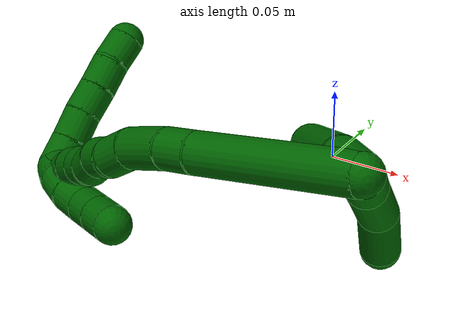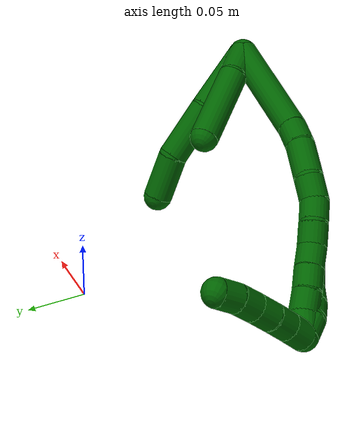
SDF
<sdf version="1.7">
 <world name="default">
  <model name="6">
   <static>0</static>
   <link name="6">
    <collision name="collision-cylinder-e_1_2_8">
     <pose>0.00735 -0.013882 -0.025456 2.64232 0.248263 0.910251</pose>
     <geometry><cylinder><radius>0.0125</radius><length>0.059824</length></cylinder></geometry>
     <surface>
      <friction><ode><mu>1.16</mu><mu2>1.16</mu2><slip1>0</slip1><slip2>0</slip2></ode></friction>
      <contact><ode><kp>1e+06</kp><kd>1</kd><max_vel>0</max_vel><min_depth>0.001</min_depth></ode></contact>
     </surface>
    </collision>
    <visual name="visual-cylinder-e_1_2_8">
     <pose>0.00735 -0.013882 -0.025456 2.64232 0.248263 0.910251</pose>
     <geometry><cylinder><radius>0.0125</radius><length>0.059824</length></cylinder></geometry>
     <material><ambient>0 0.392157 0.003922 1</ambient></material>
    </visual>
    <collision name="collision-cylinder-e_2_8_9">
     <pose>0.02177 -0.043852 -0.069312 2.42316 0.281567 0.721768</pose>
     <geometry><cylinder><radius>0.0125</radius><length>0.050887</length></cylinder></geometry>
     <surface>
      <friction><ode><mu>1.16</mu><mu2>1.16</mu2><slip1>0</slip1><slip2>0</slip2></ode></friction>
      <contact><ode><kp>1e+06</kp><kd>1</kd><max_vel>0</max_vel><min_depth>0.001</min_depth></ode></contact>
     </surface>
    </collision>
    <visual name="visual-cylinder-e_2_8_9">
     <pose>0.02177 -0.043852 -0.069312 2.42316 0.281567 0.721768</pose>
     <geometry><cylinder><radius>0.0125</radius><length>0.050887</length></cylinder></geometry>
     <material><ambient>0 0.392157 0.003922 1</ambient></material>
    </visual>
    <collision name="collision-cylinder-e_3_9_6">
     <pose>0.030823 -0.076267 -0.098454 2.15272 0.101148 0.187233</pose>
     <geometry><cylinder><radius>0.0125</radius><length>0.039289</length></cylinder></geometry>
     <surface>
      <friction><ode><mu>1.16</mu><mu2>1.16</mu2><slip1>0</slip1><slip2>0</slip2></ode></friction>
      <contact><ode><kp>1e+06</kp><kd>1</kd><max_vel>0</max_vel><min_depth>0.001</min_depth></ode></contact>
     </surface>
    </collision>
    <visual name="visual-cylinder-e_3_9_6">
     <pose>0.030823 -0.076267 -0.098454 2.15272 0.101148 0.187233</pose>
     <geometry><cylinder><radius>0.0125</radius><length>0.039289</length></cylinder></geometry>
     <material><ambient>0 0.392157 0.003922 1</ambient></material>
    </visual>
    <collision name="collision-cylinder-e_1_2_10">
     <pose>-0.000784 -0.000179 -0.015234 3.12987 -0.051405 -2.69334</pose>
     <geometry><cylinder><radius>0.0125</radius><length>0.03051</length></cylinder></geometry>
     <surface>
      <friction><ode><mu>1.16</mu><mu2>1.16</mu2><slip1>0</slip1><slip2>0</slip2></ode></friction>
      <contact><ode><kp>1e+06</kp><kd>1</kd><max_vel>0</max_vel><min_depth>0.001</min_depth></ode></contact>
     </surface>
    </collision>
    <visual name="visual-cylinder-e_1_2_10">
     <pose>-0.000784 -0.000179 -0.015234 3.12987 -0.051405 -2.69334</pose>
     <geometry><cylinder><radius>0.0125</radius><length>0.03051</length></cylinder></geometry>
     <material><ambient>0 0.392157 0.003922 1</ambient></material>
    </visual>
    <collision name="collision-cylinder-e_2_10_5">
     <pose>-0.001568 -0.007503 -0.06447 2.93446 -2e-06 -1.7e-05</pose>
     <geometry><cylinder><radius>0.0125</radius><length>0.06949</length></cylinder></geometry>
     <surface>
      <friction><ode><mu>1.16</mu><mu2>1.16</mu2><slip1>0</slip1><slip2>0</slip2></ode></friction>
      <contact><ode><kp>1e+06</kp><kd>1</kd><max_vel>0</max_vel><min_depth>0.001</min_depth></ode></contact>
     </surface>
    </collision>
    <visual name="visual-cylinder-e_2_10_5">
     <pose>-0.001568 -0.007503 -0.06447 2.93446 -2e-06 -1.7e-05</pose>
     <geometry><cylinder><radius>0.0125</radius><length>0.06949</length></cylinder></geometry>
     <material><ambient>0 0.392157 0.003922 1</ambient></material>
    </visual>
    <collision name="collision-cylinder-e_1_2_11">
     <pose>-0.035472 0.002082 -0.037373 -3.08593 -0.758536 3.00214</pose>
     <geometry><cylinder><radius>0.0125</radius><length>0.103139</length></cylinder></geometry>
     <surface>
      <friction><ode><mu>1.16</mu><mu2>1.16</mu2><slip1>0</slip1><slip2>0</slip2></ode></friction>
      <contact><ode><kp>1e+06</kp><kd>1</kd><max_vel>0</max_vel><min_depth>0.001</min_depth></ode></contact>
     </surface>
    </collision>
    <visual name="visual-cylinder-e_1_2_11">
     <pose>-0.035472 0.002082 -0.037373 -3.08593 -0.758536 3.00214</pose>
     <geometry><cylinder><radius>0.0125</radius><length>0.103139</length></cylinder></geometry>
     <material><ambient>0 0.392157 0.003922 1</ambient></material>
    </visual>
    <collision name="collision-cylinder-e_2_11_12">
     <pose>-0.077401 0.004144 -0.083333 3.13918 -0.64469 -3.13438</pose>
     <geometry><cylinder><radius>0.0125</radius><length>0.021486</length></cylinder></geometry>
     <surface>
      <friction><ode><mu>1.16</mu><mu2>1.16</mu2><slip1>0</slip1><slip2>0</slip2></ode></friction>
      <contact><ode><kp>1e+06</kp><kd>1</kd><max_vel>0</max_vel><min_depth>0.001</min_depth></ode></contact>
     </surface>
    </collision>
    <visual name="visual-cylinder-e_2_11_12">
     <pose>-0.077401 0.004144 -0.083333 3.13918 -0.64469 -3.13438</pose>
     <geometry><cylinder><radius>0.0125</radius><length>0.021486</length></cylinder></geometry>
     <material><ambient>0 0.392157 0.003922 1</ambient></material>
    </visual>
    <collision name="collision-cylinder-e_3_12_13">
     <pose>-0.092488 0.001755 -0.106008 2.97502 -0.543467 -2.55939</pose>
     <geometry><cylinder><radius>0.0125</radius><length>0.033382</length></cylinder></geometry>
     <surface>
      <friction><ode><mu>1.16</mu><mu2>1.16</mu2><slip1>0</slip1><slip2>0</slip2></ode></friction>
      <contact><ode><kp>1e+06</kp><kd>1</kd><max_vel>0</max_vel><min_depth>0.001</min_depth></ode></contact>
     </surface>
    </collision>
    <visual name="visual-cylinder-e_3_12_13">
     <pose>-0.092488 0.001755 -0.106008 2.97502 -0.543467 -2.55939</pose>
     <geometry><cylinder><radius>0.0125</radius><length>0.033382</length></cylinder></geometry>
     <material><ambient>0 0.392157 0.003922 1</ambient></material>
    </visual>
    <collision name="collision-cylinder-e_4_13_14">
     <pose>-0.106883 -0.004734 -0.128241 2.67323 -0.563267 -1.76255</pose>
     <geometry><cylinder><radius>0.0125</radius><length>0.021589</length></cylinder></geometry>
     <surface>
      <friction><ode><mu>1.16</mu><mu2>1.16</mu2><slip1>0</slip1><slip2>0</slip2></ode></friction>
      <contact><ode><kp>1e+06</kp><kd>1</kd><max_vel>0</max_vel><min_depth>0.001</min_depth></ode></contact>
     </surface>
    </collision>
    <visual name="visual-cylinder-e_4_13_14">
     <pose>-0.106883 -0.004734 -0.128241 2.67323 -0.563267 -1.76255</pose>
     <geometry><cylinder><radius>0.0125</radius><length>0.021589</length></cylinder></geometry>
     <material><ambient>0 0.392157 0.003922 1</ambient></material>
    </visual>
    <collision name="collision-cylinder-e_5_14_15">
     <pose>-0.115555 -0.011304 -0.145665 2.8835 -0.294233 -1.70314</pose>
     <geometry><cylinder><radius>0.0125</radius><length>0.020058</length></cylinder></geometry>
     <surface>
      <friction><ode><mu>1.16</mu><mu2>1.16</mu2><slip1>0</slip1><slip2>0</slip2></ode></friction>
      <contact><ode><kp>1e+06</kp><kd>1</kd><max_vel>0</max_vel><min_depth>0.001</min_depth></ode></contact>
     </surface>
    </collision>
    <visual name="visual-cylinder-e_5_14_15">
     <pose>-0.115555 -0.011304 -0.145665 2.8835 -0.294233 -1.70314</pose>
     <geometry><cylinder><radius>0.0125</radius><length>0.020058</length></cylinder></geometry>
     <material><ambient>0 0.392157 0.003922 1</ambient></material>
    </visual>
    <collision name="collision-cylinder-e_6_15_16">
     <pose>-0.121141 -0.018675 -0.163406 2.61477 -0.266995 -0.924077</pose>
     <geometry><cylinder><radius>0.0125</radius><length>0.020295</length></cylinder></geometry>
     <surface>
      <friction><ode><mu>1.16</mu><mu2>1.16</mu2><slip1>0</slip1><slip2>0</slip2></ode></friction>
      <contact><ode><kp>1e+06</kp><kd>1</kd><max_vel>0</max_vel><min_depth>0.001</min_depth></ode></contact>
     </surface>
    </collision>
    <visual name="visual-cylinder-e_6_15_16">
     <pose>-0.121141 -0.018675 -0.163406 2.61477 -0.266995 -0.924077</pose>
     <geometry><cylinder><radius>0.0125</radius><length>0.020295</length></cylinder></geometry>
     <material><ambient>0 0.392157 0.003922 1</ambient></material>
    </visual>
    <collision name="collision-cylinder-e_7_16_17">
     <pose>-0.125947 -0.025992 -0.18136 2.89441 -0.214084 -1.42626</pose>
     <geometry><cylinder><radius>0.0125</radius><length>0.02004</length></cylinder></geometry>
     <surface>
      <friction><ode><mu>1.16</mu><mu2>1.16</mu2><slip1>0</slip1><slip2>0</slip2></ode></friction>
      <contact><ode><kp>1e+06</kp><kd>1</kd><max_vel>0</max_vel><min_depth>0.001</min_depth></ode></contact>
     </surface>
    </collision>
    <visual name="visual-cylinder-e_7_16_17">
     <pose>-0.125947 -0.025992 -0.18136 2.89441 -0.214084 -1.42626</pose>
     <geometry><cylinder><radius>0.0125</radius><length>0.02004</length></cylinder></geometry>
     <material><ambient>0 0.392157 0.003922 1</ambient></material>
    </visual>
    <collision name="collision-cylinder-e_8_17_18">
     <pose>-0.130665 -0.031159 -0.200111 2.85076 -0.261804 -1.46451</pose>
     <geometry><cylinder><radius>0.0125</radius><length>0.020009</length></cylinder></geometry>
     <surface>
      <friction><ode><mu>1.16</mu><mu2>1.16</mu2><slip1>0</slip1><slip2>0</slip2></ode></friction>
      <contact><ode><kp>1e+06</kp><kd>1</kd><max_vel>0</max_vel><min_depth>0.001</min_depth></ode></contact>
     </surface>
    </collision>
    <visual name="visual-cylinder-e_8_17_18">
     <pose>-0.130665 -0.031159 -0.200111 2.85076 -0.261804 -1.46451</pose>
     <geometry><cylinder><radius>0.0125</radius><length>0.020009</length></cylinder></geometry>
     <material><ambient>0 0.392157 0.003922 1</ambient></material>
    </visual>
    <collision name="collision-cylinder-e_9_18_19">
     <pose>-0.13505 -0.037689 -0.21846 2.74945 -0.18056 -0.855275</pose>
     <geometry><cylinder><radius>0.0125</radius><length>0.020001</length></cylinder></geometry>
     <surface>
      <friction><ode><mu>1.16</mu><mu2>1.16</mu2><slip1>0</slip1><slip2>0</slip2></ode></friction>
      <contact><ode><kp>1e+06</kp><kd>1</kd><max_vel>0</max_vel><min_depth>0.001</min_depth></ode></contact>
     </surface>
    </collision>
    <visual name="visual-cylinder-e_9_18_19">
     <pose>-0.13505 -0.037689 -0.21846 2.74945 -0.18056 -0.855275</pose>
     <geometry><cylinder><radius>0.0125</radius><length>0.020001</length></cylinder></geometry>
     <material><ambient>0 0.392157 0.003922 1</ambient></material>
    </visual>
    <collision name="collision-cylinder-e_10_19_1">
     <pose>-0.140327 -0.042854 -0.236821 2.99122 -0.355534 -2.34756</pose>
     <geometry><cylinder><radius>0.0125</radius><length>0.020002</length></cylinder></geometry>
     <surface>
      <friction><ode><mu>1.16</mu><mu2>1.16</mu2><slip1>0</slip1><slip2>0</slip2></ode></friction>
      <contact><ode><kp>1e+06</kp><kd>1</kd><max_vel>0</max_vel><min_depth>0.001</min_depth></ode></contact>
     </surface>
    </collision>
    <visual name="visual-cylinder-e_10_19_1">
     <pose>-0.140327 -0.042854 -0.236821 2.99122 -0.355534 -2.34756</pose>
     <geometry><cylinder><radius>0.0125</radius><length>0.020002</length></cylinder></geometry>
     <material><ambient>0 0.392157 0.003922 1</ambient></material>
    </visual>
    <collision name="collision-cylinder-e_1_1_20">
     <pose>-0.137459 -0.03731 -0.249468 -2.02326 0.68791 -1.03974</pose>
     <geometry><cylinder><radius>0.0125</radius><length>0.02</length></cylinder></geometry>
     <surface>
      <friction><ode><mu>1.16</mu><mu2>1.16</mu2><slip1>0</slip1><slip2>0</slip2></ode></friction>
      <contact><ode><kp>1e+06</kp><kd>1</kd><max_vel>0</max_vel><min_depth>0.001</min_depth></ode></contact>
     </surface>
    </collision>
    <visual name="visual-cylinder-e_1_1_20">
     <pose>-0.137459 -0.03731 -0.249468 -2.02326 0.68791 -1.03974</pose>
     <geometry><cylinder><radius>0.0125</radius><length>0.02</length></cylinder></geometry>
     <material><ambient>0 0.392157 0.003922 1</ambient></material>
    </visual>
    <collision name="collision-cylinder-e_2_20_21">
     <pose>-0.125108 -0.023325 -0.256649 -2.06625 0.643726 -1.01982</pose>
     <geometry><cylinder><radius>0.0125</radius><length>0.02</length></cylinder></geometry>
     <surface>
      <friction><ode><mu>1.16</mu><mu2>1.16</mu2><slip1>0</slip1><slip2>0</slip2></ode></friction>
      <contact><ode><kp>1e+06</kp><kd>1</kd><max_vel>0</max_vel><min_depth>0.001</min_depth></ode></contact>
     </surface>
    </collision>
    <visual name="visual-cylinder-e_2_20_21">
     <pose>-0.125108 -0.023325 -0.256649 -2.06625 0.643726 -1.01982</pose>
     <geometry><cylinder><radius>0.0125</radius><length>0.02</length></cylinder></geometry>
     <material><ambient>0 0.392157 0.003922 1</ambient></material>
    </visual>
    <collision name="collision-cylinder-e_3_21_22">
     <pose>-0.112405 -0.009735 -0.263938 -2.05972 0.734406 -1.1391</pose>
     <geometry><cylinder><radius>0.0125</radius><length>0.02</length></cylinder></geometry>
     <surface>
      <friction><ode><mu>1.16</mu><mu2>1.16</mu2><slip1>0</slip1><slip2>0</slip2></ode></friction>
      <contact><ode><kp>1e+06</kp><kd>1</kd><max_vel>0</max_vel><min_depth>0.001</min_depth></ode></contact>
     </surface>
    </collision>
    <visual name="visual-cylinder-e_3_21_22">
     <pose>-0.112405 -0.009735 -0.263938 -2.05972 0.734406 -1.1391</pose>
     <geometry><cylinder><radius>0.0125</radius><length>0.02</length></cylinder></geometry>
     <material><ambient>0 0.392157 0.003922 1</ambient></material>
    </visual>
    <collision name="collision-cylinder-e_4_22_23">
     <pose>-0.099362 0.003461 -0.27138 -2.10793 0.686887 -1.12323</pose>
     <geometry><cylinder><radius>0.0125</radius><length>0.02</length></cylinder></geometry>
     <surface>
      <friction><ode><mu>1.16</mu><mu2>1.16</mu2><slip1>0</slip1><slip2>0</slip2></ode></friction>
      <contact><ode><kp>1e+06</kp><kd>1</kd><max_vel>0</max_vel><min_depth>0.001</min_depth></ode></contact>
     </surface>
    </collision>
    <visual name="visual-cylinder-e_4_22_23">
     <pose>-0.099362 0.003461 -0.27138 -2.10793 0.686887 -1.12323</pose>
     <geometry><cylinder><radius>0.0125</radius><length>0.02</length></cylinder></geometry>
     <material><ambient>0 0.392157 0.003922 1</ambient></material>
    </visual>
    <collision name="collision-cylinder-e_5_23_4">
     <pose>-0.08617 0.015526 -0.280203 -2.30228 0.754688 -1.45266</pose>
     <geometry><cylinder><radius>0.0125</radius><length>0.02</length></cylinder></geometry>
     <surface>
      <friction><ode><mu>1.16</mu><mu2>1.16</mu2><slip1>0</slip1><slip2>0</slip2></ode></friction>
      <contact><ode><kp>1e+06</kp><kd>1</kd><max_vel>0</max_vel><min_depth>0.001</min_depth></ode></contact>
     </surface>
    </collision>
    <visual name="visual-cylinder-e_5_23_4">
     <pose>-0.08617 0.015526 -0.280203 -2.30228 0.754688 -1.45266</pose>
     <geometry><cylinder><radius>0.0125</radius><length>0.02</length></cylinder></geometry>
     <material><ambient>0 0.392157 0.003922 1</ambient></material>
    </visual>
    <collision name="collision-cylinder-e_1_1_24">
     <pose>-0.143693 -0.044875 -0.236111 0.06178 0.011513 0.000356</pose>
     <geometry><cylinder><radius>0.0125</radius><length>0.02</length></cylinder></geometry>
     <surface>
      <friction><ode><mu>1.16</mu><mu2>1.16</mu2><slip1>0</slip1><slip2>0</slip2></ode></friction>
      <contact><ode><kp>1e+06</kp><kd>1</kd><max_vel>0</max_vel><min_depth>0.001</min_depth></ode></contact>
     </surface>
    </collision>
    <visual name="visual-cylinder-e_1_1_24">
     <pose>-0.143693 -0.044875 -0.236111 0.06178 0.011513 0.000356</pose>
     <geometry><cylinder><radius>0.0125</radius><length>0.02</length></cylinder></geometry>
     <material><ambient>0 0.392157 0.003922 1</ambient></material>
    </visual>
    <collision name="collision-cylinder-e_2_24_25">
     <pose>-0.141278 -0.048058 -0.216742 0.266704 0.232074 0.03127</pose>
     <geometry><cylinder><radius>0.0125</radius><length>0.02</length></cylinder></geometry>
     <surface>
      <friction><ode><mu>1.16</mu><mu2>1.16</mu2><slip1>0</slip1><slip2>0</slip2></ode></friction>
      <contact><ode><kp>1e+06</kp><kd>1</kd><max_vel>0</max_vel><min_depth>0.001</min_depth></ode></contact>
     </surface>
    </collision>
    <visual name="visual-cylinder-e_2_24_25">
     <pose>-0.141278 -0.048058 -0.216742 0.266704 0.232074 0.03127</pose>
     <geometry><cylinder><radius>0.0125</radius><length>0.02</length></cylinder></geometry>
     <material><ambient>0 0.392157 0.003922 1</ambient></material>
    </visual>
    <collision name="collision-cylinder-e_3_25_26">
     <pose>-0.135233 -0.052471 -0.198269 0.200693 0.383924 0.039132</pose>
     <geometry><cylinder><radius>0.0125</radius><length>0.02</length></cylinder></geometry>
     <surface>
      <friction><ode><mu>1.16</mu><mu2>1.16</mu2><slip1>0</slip1><slip2>0</slip2></ode></friction>
      <contact><ode><kp>1e+06</kp><kd>1</kd><max_vel>0</max_vel><min_depth>0.001</min_depth></ode></contact>
     </surface>
    </collision>
    <visual name="visual-cylinder-e_3_25_26">
     <pose>-0.135233 -0.052471 -0.198269 0.200693 0.383924 0.039132</pose>
     <geometry><cylinder><radius>0.0125</radius><length>0.02</length></cylinder></geometry>
     <material><ambient>0 0.392157 0.003922 1</ambient></material>
    </visual>
    <collision name="collision-cylinder-e_4_26_27">
     <pose>-0.128429 -0.054804 -0.179674 0.050901 0.31077 0.007975</pose>
     <geometry><cylinder><radius>0.0125</radius><length>0.02</length></cylinder></geometry>
     <surface>
      <friction><ode><mu>1.16</mu><mu2>1.16</mu2><slip1>0</slip1><slip2>0</slip2></ode></friction>
      <contact><ode><kp>1e+06</kp><kd>1</kd><max_vel>0</max_vel><min_depth>0.001</min_depth></ode></contact>
     </surface>
    </collision>
    <visual name="visual-cylinder-e_4_26_27">
     <pose>-0.128429 -0.054804 -0.179674 0.050901 0.31077 0.007975</pose>
     <geometry><cylinder><radius>0.0125</radius><length>0.02</length></cylinder></geometry>
     <material><ambient>0 0.392157 0.003922 1</ambient></material>
    </visual>
    <collision name="collision-cylinder-e_5_27_3">
     <pose>-0.122408 -0.05564 -0.160621 0.036883 0.300882 0.005592</pose>
     <geometry><cylinder><radius>0.0125</radius><length>0.02</length></cylinder></geometry>
     <surface>
      <friction><ode><mu>1.16</mu><mu2>1.16</mu2><slip1>0</slip1><slip2>0</slip2></ode></friction>
      <contact><ode><kp>1e+06</kp><kd>1</kd><max_vel>0</max_vel><min_depth>0.001</min_depth></ode></contact>
     </surface>
    </collision>
    <visual name="visual-cylinder-e_5_27_3">
     <pose>-0.122408 -0.05564 -0.160621 0.036883 0.300882 0.005592</pose>
     <geometry><cylinder><radius>0.0125</radius><length>0.02</length></cylinder></geometry>
     <material><ambient>0 0.392157 0.003922 1</ambient></material>
    </visual>
    <collision name="collision-sphere-3">
     <pose>-0.119444 -0.055993 -0.151077 0 -0 0</pose>
     <geometry><sphere><radius>0.0125</radius></sphere></geometry>
     <surface>
      <friction><ode><mu>1.16</mu><mu2>1.16</mu2><slip1>0</slip1><slip2>0</slip2></ode></friction>
      <contact><ode><kp>1e+06</kp><kd>1</kd><max_vel>0</max_vel><min_depth>0.001</min_depth></ode></contact>
     </surface>
    </collision>
    <visual name="visual-sphere-3">
     <pose>-0.119444 -0.055993 -0.151077 0 -0 0</pose>
     <geometry><sphere><radius>0.0125</radius></sphere></geometry>
     <material><ambient>0 0.392157 0.003922 1</ambient></material>
    </visual>
    <collision name="collision-sphere-27">
     <pose>-0.125371 -0.055288 -0.170165 0 -0 0</pose>
     <geometry><sphere><radius>0.0125</radius></sphere></geometry>
     <surface>
      <friction><ode><mu>1.16</mu><mu2>1.16</mu2><slip1>0</slip1><slip2>0</slip2></ode></friction>
      <contact><ode><kp>1e+06</kp><kd>1</kd><max_vel>0</max_vel><min_depth>0.001</min_depth></ode></contact>
     </surface>
    </collision>
    <visual name="visual-sphere-27">
     <pose>-0.125371 -0.055288 -0.170165 0 -0 0</pose>
     <geometry><sphere><radius>0.0125</radius></sphere></geometry>
     <material><ambient>0 0.392157 0.003922 1</ambient></material>
    </visual>
    <collision name="collision-sphere-26">
     <pose>-0.131487 -0.054319 -0.189183 0 -0 0</pose>
     <geometry><sphere><radius>0.0125</radius></sphere></geometry>
     <surface>
      <friction><ode><mu>1.16</mu><mu2>1.16</mu2><slip1>0</slip1><slip2>0</slip2></ode></friction>
      <contact><ode><kp>1e+06</kp><kd>1</kd><max_vel>0</max_vel><min_depth>0.001</min_depth></ode></contact>
     </surface>
    </collision>
    <visual name="visual-sphere-26">
     <pose>-0.131487 -0.054319 -0.189183 0 -0 0</pose>
     <geometry><sphere><radius>0.0125</radius></sphere></geometry>
     <material><ambient>0 0.392157 0.003922 1</ambient></material>
    </visual>
    <collision name="collision-sphere-25">
     <pose>-0.138978 -0.050623 -0.207355 0 -0 0</pose>
     <geometry><sphere><radius>0.0125</radius></sphere></geometry>
     <surface>
      <friction><ode><mu>1.16</mu><mu2>1.16</mu2><slip1>0</slip1><slip2>0</slip2></ode></friction>
      <contact><ode><kp>1e+06</kp><kd>1</kd><max_vel>0</max_vel><min_depth>0.001</min_depth></ode></contact>
     </surface>
    </collision>
    <visual name="visual-sphere-25">
     <pose>-0.138978 -0.050623 -0.207355 0 -0 0</pose>
     <geometry><sphere><radius>0.0125</radius></sphere></geometry>
     <material><ambient>0 0.392157 0.003922 1</ambient></material>
    </visual>
    <collision name="collision-sphere-24">
     <pose>-0.143578 -0.045493 -0.22613 0 -0 0</pose>
     <geometry><sphere><radius>0.0125</radius></sphere></geometry>
     <surface>
      <friction><ode><mu>1.16</mu><mu2>1.16</mu2><slip1>0</slip1><slip2>0</slip2></ode></friction>
      <contact><ode><kp>1e+06</kp><kd>1</kd><max_vel>0</max_vel><min_depth>0.001</min_depth></ode></contact>
     </surface>
    </collision>
    <visual name="visual-sphere-24">
     <pose>-0.143578 -0.045493 -0.22613 0 -0 0</pose>
     <geometry><sphere><radius>0.0125</radius></sphere></geometry>
     <material><ambient>0 0.392157 0.003922 1</ambient></material>
    </visual>
    <collision name="collision-sphere-4">
     <pose>-0.07932 0.020947 -0.285069 0 -0 0</pose>
     <geometry><sphere><radius>0.0125</radius></sphere></geometry>
     <surface>
      <friction><ode><mu>1.16</mu><mu2>1.16</mu2><slip1>0</slip1><slip2>0</slip2></ode></friction>
      <contact><ode><kp>1e+06</kp><kd>1</kd><max_vel>0</max_vel><min_depth>0.001</min_depth></ode></contact>
     </surface>
    </collision>
    <visual name="visual-sphere-4">
     <pose>-0.07932 0.020947 -0.285069 0 -0 0</pose>
     <geometry><sphere><radius>0.0125</radius></sphere></geometry>
     <material><ambient>0 0.392157 0.003922 1</ambient></material>
    </visual>
    <collision name="collision-sphere-23">
     <pose>-0.093021 0.010104 -0.275336 0 -0 0</pose>
     <geometry><sphere><radius>0.0125</radius></sphere></geometry>
     <surface>
      <friction><ode><mu>1.16</mu><mu2>1.16</mu2><slip1>0</slip1><slip2>0</slip2></ode></friction>
      <contact><ode><kp>1e+06</kp><kd>1</kd><max_vel>0</max_vel><min_depth>0.001</min_depth></ode></contact>
     </surface>
    </collision>
    <visual name="visual-sphere-23">
     <pose>-0.093021 0.010104 -0.275336 0 -0 0</pose>
     <geometry><sphere><radius>0.0125</radius></sphere></geometry>
     <material><ambient>0 0.392157 0.003922 1</ambient></material>
    </visual>
    <collision name="collision-sphere-22">
     <pose>-0.105704 -0.003182 -0.267424 0 -0 0</pose>
     <geometry><sphere><radius>0.0125</radius></sphere></geometry>
     <surface>
      <friction><ode><mu>1.16</mu><mu2>1.16</mu2><slip1>0</slip1><slip2>0</slip2></ode></friction>
      <contact><ode><kp>1e+06</kp><kd>1</kd><max_vel>0</max_vel><min_depth>0.001</min_depth></ode></contact>
     </surface>
    </collision>
    <visual name="visual-sphere-22">
     <pose>-0.105704 -0.003182 -0.267424 0 -0 0</pose>
     <geometry><sphere><radius>0.0125</radius></sphere></geometry>
     <material><ambient>0 0.392157 0.003922 1</ambient></material>
    </visual>
    <collision name="collision-sphere-21">
     <pose>-0.119106 -0.016288 -0.260451 0 -0 0</pose>
     <geometry><sphere><radius>0.0125</radius></sphere></geometry>
     <surface>
      <friction><ode><mu>1.16</mu><mu2>1.16</mu2><slip1>0</slip1><slip2>0</slip2></ode></friction>
      <contact><ode><kp>1e+06</kp><kd>1</kd><max_vel>0</max_vel><min_depth>0.001</min_depth></ode></contact>
     </surface>
    </collision>
    <visual name="visual-sphere-21">
     <pose>-0.119106 -0.016288 -0.260451 0 -0 0</pose>
     <geometry><sphere><radius>0.0125</radius></sphere></geometry>
     <material><ambient>0 0.392157 0.003922 1</ambient></material>
    </visual>
    <collision name="collision-sphere-20">
     <pose>-0.13111 -0.030361 -0.252846 0 -0 0</pose>
     <geometry><sphere><radius>0.0125</radius></sphere></geometry>
     <surface>
      <friction><ode><mu>1.16</mu><mu2>1.16</mu2><slip1>0</slip1><slip2>0</slip2></ode></friction>
      <contact><ode><kp>1e+06</kp><kd>1</kd><max_vel>0</max_vel><min_depth>0.001</min_depth></ode></contact>
     </surface>
    </collision>
    <visual name="visual-sphere-20">
     <pose>-0.13111 -0.030361 -0.252846 0 -0 0</pose>
     <geometry><sphere><radius>0.0125</radius></sphere></geometry>
     <material><ambient>0 0.392157 0.003922 1</ambient></material>
    </visual>
    <collision name="collision-sphere-5">
     <pose>-0.001568 -0.014648 -0.098472 0 -0 0</pose>
     <geometry><sphere><radius>0.0125</radius></sphere></geometry>
     <surface>
      <friction><ode><mu>1.16</mu><mu2>1.16</mu2><slip1>0</slip1><slip2>0</slip2></ode></friction>
      <contact><ode><kp>1e+06</kp><kd>1</kd><max_vel>0</max_vel><min_depth>0.001</min_depth></ode></contact>
     </surface>
    </collision>
    <visual name="visual-sphere-5">
     <pose>-0.001568 -0.014648 -0.098472 0 -0 0</pose>
     <geometry><sphere><radius>0.0125</radius></sphere></geometry>
     <material><ambient>0 0.392157 0.003922 1</ambient></material>
    </visual>
    <collision name="collision-sphere-10">
     <pose>-0.001568 -0.000357 -0.030468 0 -0 0</pose>
     <geometry><sphere><radius>0.0125</radius></sphere></geometry>
     <surface>
      <friction><ode><mu>1.16</mu><mu2>1.16</mu2><slip1>0</slip1><slip2>0</slip2></ode></friction>
      <contact><ode><kp>1e+06</kp><kd>1</kd><max_vel>0</max_vel><min_depth>0.001</min_depth></ode></contact>
     </surface>
    </collision>
    <visual name="visual-sphere-10">
     <pose>-0.001568 -0.000357 -0.030468 0 -0 0</pose>
     <geometry><sphere><radius>0.0125</radius></sphere></geometry>
     <material><ambient>0 0.392157 0.003922 1</ambient></material>
    </visual>
    <collision name="collision-sphere-6">
     <pose>0.032807 -0.092594 -0.109196 0 -0 0</pose>
     <geometry><sphere><radius>0.0125</radius></sphere></geometry>
     <surface>
      <friction><ode><mu>1.16</mu><mu2>1.16</mu2><slip1>0</slip1><slip2>0</slip2></ode></friction>
      <contact><ode><kp>1e+06</kp><kd>1</kd><max_vel>0</max_vel><min_depth>0.001</min_depth></ode></contact>
     </surface>
    </collision>
    <visual name="visual-sphere-6">
     <pose>0.032807 -0.092594 -0.109196 0 -0 0</pose>
     <geometry><sphere><radius>0.0125</radius></sphere></geometry>
     <material><ambient>0 0.392157 0.003922 1</ambient></material>
    </visual>
    <collision name="collision-sphere-9">
     <pose>0.028839 -0.05994 -0.087712 0 -0 0</pose>
     <geometry><sphere><radius>0.0125</radius></sphere></geometry>
     <surface>
      <friction><ode><mu>1.16</mu><mu2>1.16</mu2><slip1>0</slip1><slip2>0</slip2></ode></friction>
      <contact><ode><kp>1e+06</kp><kd>1</kd><max_vel>0</max_vel><min_depth>0.001</min_depth></ode></contact>
     </surface>
    </collision>
    <visual name="visual-sphere-9">
     <pose>0.028839 -0.05994 -0.087712 0 -0 0</pose>
     <geometry><sphere><radius>0.0125</radius></sphere></geometry>
     <material><ambient>0 0.392157 0.003922 1</ambient></material>
    </visual>
    <collision name="collision-sphere-2">
     <geometry><sphere><radius>0.0125</radius></sphere></geometry>
     <surface>
      <friction><ode><mu>1.16</mu><mu2>1.16</mu2><slip1>0</slip1><slip2>0</slip2></ode></friction>
      <contact><ode><kp>1e+06</kp><kd>1</kd><max_vel>0</max_vel><min_depth>0.001</min_depth></ode></contact>
     </surface>
    </collision>
    <visual name="visual-sphere-2">
     <geometry><sphere><radius>0.0125</radius></sphere></geometry>
     <material><ambient>0 0.392157 0.003922 1</ambient></material>
    </visual>
    <collision name="collision-sphere-19">
     <pose>-0.136846 -0.041449 -0.227551 0 -0 0</pose>
     <geometry><sphere><radius>0.0125</radius></sphere></geometry>
     <surface>
      <friction><ode><mu>1.16</mu><mu2>1.16</mu2><slip1>0</slip1><slip2>0</slip2></ode></friction>
      <contact><ode><kp>1e+06</kp><kd>1</kd><max_vel>0</max_vel><min_depth>0.001</min_depth></ode></contact>
     </surface>
    </collision>
    <visual name="visual-sphere-19">
     <pose>-0.136846 -0.041449 -0.227551 0 -0 0</pose>
     <geometry><sphere><radius>0.0125</radius></sphere></geometry>
     <material><ambient>0 0.392157 0.003922 1</ambient></material>
    </visual>
    <collision name="collision-sphere-8">
     <pose>0.0147 -0.027765 -0.050911 0 -0 0</pose>
     <geometry><sphere><radius>0.0125</radius></sphere></geometry>
     <surface>
      <friction><ode><mu>1.16</mu><mu2>1.16</mu2><slip1>0</slip1><slip2>0</slip2></ode></friction>
      <contact><ode><kp>1e+06</kp><kd>1</kd><max_vel>0</max_vel><min_depth>0.001</min_depth></ode></contact>
     </surface>
    </collision>
    <visual name="visual-sphere-8">
     <pose>0.0147 -0.027765 -0.050911 0 -0 0</pose>
     <geometry><sphere><radius>0.0125</radius></sphere></geometry>
     <material><ambient>0 0.392157 0.003922 1</ambient></material>
    </visual>
    <collision name="collision-sphere-11">
     <pose>-0.070945 0.004165 -0.074747 0 -0 0</pose>
     <geometry><sphere><radius>0.0125</radius></sphere></geometry>
     <surface>
      <friction><ode><mu>1.16</mu><mu2>1.16</mu2><slip1>0</slip1><slip2>0</slip2></ode></friction>
      <contact><ode><kp>1e+06</kp><kd>1</kd><max_vel>0</max_vel><min_depth>0.001</min_depth></ode></contact>
     </surface>
    </collision>
    <visual name="visual-sphere-11">
     <pose>-0.070945 0.004165 -0.074747 0 -0 0</pose>
     <geometry><sphere><radius>0.0125</radius></sphere></geometry>
     <material><ambient>0 0.392157 0.003922 1</ambient></material>
    </visual>
    <collision name="collision-sphere-12">
     <pose>-0.083857 0.004123 -0.09192 0 -0 0</pose>
     <geometry><sphere><radius>0.0125</radius></sphere></geometry>
     <surface>
      <friction><ode><mu>1.16</mu><mu2>1.16</mu2><slip1>0</slip1><slip2>0</slip2></ode></friction>
      <contact><ode><kp>1e+06</kp><kd>1</kd><max_vel>0</max_vel><min_depth>0.001</min_depth></ode></contact>
     </surface>
    </collision>
    <visual name="visual-sphere-12">
     <pose>-0.083857 0.004123 -0.09192 0 -0 0</pose>
     <geometry><sphere><radius>0.0125</radius></sphere></geometry>
     <material><ambient>0 0.392157 0.003922 1</ambient></material>
    </visual>
    <collision name="collision-sphere-13">
     <pose>-0.101119 -0.000614 -0.120097 0 -0 0</pose>
     <geometry><sphere><radius>0.0125</radius></sphere></geometry>
     <surface>
      <friction><ode><mu>1.16</mu><mu2>1.16</mu2><slip1>0</slip1><slip2>0</slip2></ode></friction>
      <contact><ode><kp>1e+06</kp><kd>1</kd><max_vel>0</max_vel><min_depth>0.001</min_depth></ode></contact>
     </surface>
    </collision>
    <visual name="visual-sphere-13">
     <pose>-0.101119 -0.000614 -0.120097 0 -0 0</pose>
     <geometry><sphere><radius>0.0125</radius></sphere></geometry>
     <material><ambient>0 0.392157 0.003922 1</ambient></material>
    </visual>
    <collision name="collision-sphere-14">
     <pose>-0.112647 -0.008854 -0.136385 0 -0 0</pose>
     <geometry><sphere><radius>0.0125</radius></sphere></geometry>
     <surface>
      <friction><ode><mu>1.16</mu><mu2>1.16</mu2><slip1>0</slip1><slip2>0</slip2></ode></friction>
      <contact><ode><kp>1e+06</kp><kd>1</kd><max_vel>0</max_vel><min_depth>0.001</min_depth></ode></contact>
     </surface>
    </collision>
    <visual name="visual-sphere-14">
     <pose>-0.112647 -0.008854 -0.136385 0 -0 0</pose>
     <geometry><sphere><radius>0.0125</radius></sphere></geometry>
     <material><ambient>0 0.392157 0.003922 1</ambient></material>
    </visual>
    <collision name="collision-sphere-15">
     <pose>-0.118463 -0.013754 -0.154945 0 -0 0</pose>
     <geometry><sphere><radius>0.0125</radius></sphere></geometry>
     <surface>
      <friction><ode><mu>1.16</mu><mu2>1.16</mu2><slip1>0</slip1><slip2>0</slip2></ode></friction>
      <contact><ode><kp>1e+06</kp><kd>1</kd><max_vel>0</max_vel><min_depth>0.001</min_depth></ode></contact>
     </surface>
    </collision>
    <visual name="visual-sphere-15">
     <pose>-0.118463 -0.013754 -0.154945 0 -0 0</pose>
     <geometry><sphere><radius>0.0125</radius></sphere></geometry>
     <material><ambient>0 0.392157 0.003922 1</ambient></material>
    </visual>
    <collision name="collision-sphere-16">
     <pose>-0.123818 -0.023596 -0.171867 0 -0 0</pose>
     <geometry><sphere><radius>0.0125</radius></sphere></geometry>
     <surface>
      <friction><ode><mu>1.16</mu><mu2>1.16</mu2><slip1>0</slip1><slip2>0</slip2></ode></friction>
      <contact><ode><kp>1e+06</kp><kd>1</kd><max_vel>0</max_vel><min_depth>0.001</min_depth></ode></contact>
     </surface>
    </collision>
    <visual name="visual-sphere-16">
     <pose>-0.123818 -0.023596 -0.171867 0 -0 0</pose>
     <geometry><sphere><radius>0.0125</radius></sphere></geometry>
     <material><ambient>0 0.392157 0.003922 1</ambient></material>
    </visual>
    <collision name="collision-sphere-17">
     <pose>-0.128075 -0.028388 -0.190854 0 -0 0</pose>
     <geometry><sphere><radius>0.0125</radius></sphere></geometry>
     <surface>
      <friction><ode><mu>1.16</mu><mu2>1.16</mu2><slip1>0</slip1><slip2>0</slip2></ode></friction>
      <contact><ode><kp>1e+06</kp><kd>1</kd><max_vel>0</max_vel><min_depth>0.001</min_depth></ode></contact>
     </surface>
    </collision>
    <visual name="visual-sphere-17">
     <pose>-0.128075 -0.028388 -0.190854 0 -0 0</pose>
     <geometry><sphere><radius>0.0125</radius></sphere></geometry>
     <material><ambient>0 0.392157 0.003922 1</ambient></material>
    </visual>
    <collision name="collision-sphere-18">
     <pose>-0.133254 -0.03393 -0.209369 0 -0 0</pose>
     <geometry><sphere><radius>0.0125</radius></sphere></geometry>
     <surface>
      <friction><ode><mu>1.16</mu><mu2>1.16</mu2><slip1>0</slip1><slip2>0</slip2></ode></friction>
      <contact><ode><kp>1e+06</kp><kd>1</kd><max_vel>0</max_vel><min_depth>0.001</min_depth></ode></contact>
     </surface>
    </collision>
    <visual name="visual-sphere-18">
     <pose>-0.133254 -0.03393 -0.209369 0 -0 0</pose>
     <geometry><sphere><radius>0.0125</radius></sphere></geometry>
     <material><ambient>0 0.392157 0.003922 1</ambient></material>
    </visual>
    <collision name="collision-sphere-1">
     <pose>-0.143809 -0.044258 -0.246091 0 -0 0</pose>
     <geometry><sphere><radius>0.0125</radius></sphere></geometry>
     <surface>
      <friction><ode><mu>1.16</mu><mu2>1.16</mu2><slip1>0</slip1><slip2>0</slip2></ode></friction>
      <contact><ode><kp>1e+06</kp><kd>1</kd><max_vel>0</max_vel><min_depth>0.001</min_depth></ode></contact>
     </surface>
    </collision>
    <visual name="visual-sphere-1">
     <pose>-0.143809 -0.044258 -0.246091 0 -0 0</pose>
     <geometry><sphere><radius>0.0125</radius></sphere></geometry>
     <material><ambient>0 0.392157 0.003922 1</ambient></material>
    </visual>
    <inertial>
     <pose>-0.064193 -0.021108 -0.126746 0 -0 0</pose>
     <mass>0.75</mass>
     <inertia><ixx>8e-06</ixx><ixy>0</ixy><ixz>0</ixz><iyy>7.5e-05</iyy><iyz>0</iyz><izz>5.1e-05</izz></inertia>
    </inertial>
   </link>
   <pose>0.119182 -0.205609 0.116575 1.39489 -0.127582 0.775941</pose>
  </model>
 </world>
</sdf>
